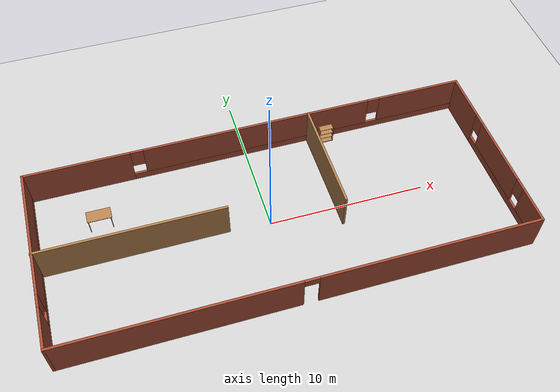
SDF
<sdf version="1.6">
 <world name="default">
  <light name="sun" type="directional">
   <pose>0 0 10 0 -0 0</pose>
   <diffuse>0.8 0.8 0.8 1</diffuse>
   <specular>0.2 0.2 0.2 1</specular>
   <attenuation>
    <range>1000</range>
    <constant>0.9</constant>
    <linear>0.01</linear>
    <quadratic>0.001</quadratic>
   </attenuation>
   <direction>-0.5 0.1 -0.9</direction>
  </light>
  <model name="ground_plane">
   <static>1</static>
   <link name="link">
    <collision name="collision">
     <geometry><plane><normal>0 0 1</normal><size>100 100</size></plane></geometry>
     <surface>
      <contact><collide_bitmask>65535</collide_bitmask></contact>
      <friction><ode><mu>100</mu><mu2>50</mu2></ode></friction>
     </surface>
    </collision>
    <visual name="visual">
     <cast_shadows>0</cast_shadows>
     <geometry><plane><normal>0 0 1</normal><size>100 100</size></plane></geometry>
     <material>
      <script><uri>file://media/materials/scripts/gazebo.material</uri><name>Gazebo/Grey</name></script>
     </material>
    </visual>
   </link>
  </model>
  <gravity>0 0 -9.8</gravity>
  <magnetic_field>6e-06 2.3e-05 -4.2e-05</magnetic_field>
  <atmosphere type="adiabatic"/>
  <physics name="default_physics" default="0" type="ode">
   <max_step_size>0.001</max_step_size>
   <real_time_factor>1</real_time_factor>
   <real_time_update_rate>1000</real_time_update_rate>
  </physics>
  <scene><ambient>0.4 0.4 0.4 1</ambient><background>0.7 0.7 0.7 1</background><shadows>1</shadows></scene>
  <spherical_coordinates>
   <surface_model>EARTH_WGS84</surface_model>
   <latitude_deg>0</latitude_deg>
   <longitude_deg>0</longitude_deg>
   <elevation>0</elevation>
   <heading_deg>0</heading_deg>
  </spherical_coordinates>
  <model name="simple_cafe">
   <pose>0.375893 0.046059 0 0 -0 0</pose>
   <link name="Wall_1">
    <pose>0.020227 5.925 0 0 -0 0</pose>
    <visual name="Wall_1_Visual_0">
     <pose>-11.0381 0 1.25 0 -0 0</pose>
     <geometry><box><size>6.67382 0.15 2.5</size></box></geometry>
     <material>
      <script><uri>file://media/materials/scripts/gazebo.material</uri><name>Gazebo/Bricks</name></script>
      <ambient>1 1 1 1</ambient>
     </material>
     <meta><layer>0</layer></meta>
    </visual>
    <collision name="Wall_1_Collision_0">
     <geometry><box><size>6.67382 0.15 2.5</size></box></geometry>
     <pose>-11.0381 0 1.25 0 -0 0</pose>
    </collision>
    <visual name="Wall_1_Visual_1">
     <pose>3.33691 0 0.25 0 -0 0</pose>
     <geometry><box><size>22.0762 0.15 0.5</size></box></geometry>
     <material>
      <script><uri>file://media/materials/scripts/gazebo.material</uri><name>Gazebo/Bricks</name></script>
      <ambient>1 1 1 1</ambient>
     </material>
     <meta><layer>0</layer></meta>
    </visual>
    <collision name="Wall_1_Collision_1">
     <geometry><box><size>22.0762 0.15 0.5</size></box></geometry>
     <pose>3.33691 0 0.25 0 -0 0</pose>
    </collision>
    <visual name="Wall_1_Visual_2">
     <pose>0.547197 0 1.5 0 -0 0</pose>
     <geometry><box><size>14.8968 0.15 2</size></box></geometry>
     <material>
      <script><uri>file://media/materials/scripts/gazebo.material</uri><name>Gazebo/Bricks</name></script>
      <ambient>1 1 1 1</ambient>
     </material>
     <meta><layer>0</layer></meta>
    </visual>
    <collision name="Wall_1_Collision_2">
     <geometry><box><size>14.8968 0.15 2</size></box></geometry>
     <pose>0.547197 0 1.5 0 -0 0</pose>
    </collision>
    <visual name="Wall_1_Visual_3">
     <pose>11.5853 0 1.5 0 -0 0</pose>
     <geometry><box><size>5.57942 0.15 2</size></box></geometry>
     <material>
      <script><uri>file://media/materials/scripts/gazebo.material</uri><name>Gazebo/Bricks</name></script>
      <ambient>1 1 1 1</ambient>
     </material>
     <meta><layer>0</layer></meta>
    </visual>
    <collision name="Wall_1_Collision_3">
     <geometry><box><size>5.57942 0.15 2</size></box></geometry>
     <pose>11.5853 0 1.5 0 -0 0</pose>
    </collision>
    <visual name="Wall_1_Visual_4">
     <pose>-7.30119 0 1.9 0 -0 0</pose>
     <geometry><box><size>0.8 0.15 1.2</size></box></geometry>
     <material>
      <script><uri>file://media/materials/scripts/gazebo.material</uri><name>Gazebo/Bricks</name></script>
      <ambient>1 1 1 1</ambient>
     </material>
     <meta><layer>0</layer></meta>
    </visual>
    <collision name="Wall_1_Collision_4">
     <geometry><box><size>0.8 0.15 1.2</size></box></geometry>
     <pose>-7.30119 0 1.9 0 -0 0</pose>
    </collision>
    <visual name="Wall_1_Visual_5">
     <pose>8.39558 0 1.9 0 -0 0</pose>
     <geometry><box><size>0.8 0.15 1.2</size></box></geometry>
     <material>
      <script><uri>file://media/materials/scripts/gazebo.material</uri><name>Gazebo/Bricks</name></script>
      <ambient>1 1 1 1</ambient>
     </material>
     <meta><layer>0</layer></meta>
    </visual>
    <collision name="Wall_1_Collision_5">
     <geometry><box><size>0.8 0.15 1.2</size></box></geometry>
     <pose>8.39558 0 1.9 0 -0 0</pose>
    </collision>
   </link>
   <link name="Wall_2">
    <pose>14.3202 0 0 0 0 -1.5708</pose>
    <visual name="Wall_2_Visual_0">
     <pose>-4.342 0 1.25 0 -0 0</pose>
     <geometry><box><size>3.316 0.15 2.5</size></box></geometry>
     <material>
      <script><uri>file://media/materials/scripts/gazebo.material</uri><name>Gazebo/Bricks</name></script>
      <ambient>1 1 1 1</ambient>
     </material>
     <meta><layer>0</layer></meta>
    </visual>
    <collision name="Wall_2_Collision_0">
     <geometry><box><size>3.316 0.15 2.5</size></box></geometry>
     <pose>-4.342 0 1.25 0 -0 0</pose>
    </collision>
    <visual name="Wall_2_Visual_1">
     <pose>1.658 0 0.25 0 -0 0</pose>
     <geometry><box><size>8.684 0.15 0.5</size></box></geometry>
     <material>
      <script><uri>file://media/materials/scripts/gazebo.material</uri><name>Gazebo/Bricks</name></script>
      <ambient>1 1 1 1</ambient>
     </material>
     <meta><layer>0</layer></meta>
    </visual>
    <collision name="Wall_2_Collision_1">
     <geometry><box><size>8.684 0.15 0.5</size></box></geometry>
     <pose>1.658 0 0.25 0 -0 0</pose>
    </collision>
    <visual name="Wall_2_Visual_2">
     <pose>0.487209 0 1.5 0 -0 0</pose>
     <geometry><box><size>4.74241 0.15 2</size></box></geometry>
     <material>
      <script><uri>file://media/materials/scripts/gazebo.material</uri><name>Gazebo/Bricks</name></script>
      <ambient>1 1 1 1</ambient>
     </material>
     <meta><layer>0</layer></meta>
    </visual>
    <collision name="Wall_2_Collision_2">
     <geometry><box><size>4.74241 0.15 2</size></box></geometry>
     <pose>0.487209 0 1.5 0 -0 0</pose>
    </collision>
    <visual name="Wall_2_Visual_3">
     <pose>4.82921 0 1.5 0 -0 0</pose>
     <geometry><box><size>2.34158 0.15 2</size></box></geometry>
     <material>
      <script><uri>file://media/materials/scripts/gazebo.material</uri><name>Gazebo/Bricks</name></script>
      <ambient>1 1 1 1</ambient>
     </material>
     <meta><layer>0</layer></meta>
    </visual>
    <collision name="Wall_2_Collision_3">
     <geometry><box><size>2.34158 0.15 2</size></box></geometry>
     <pose>4.82921 0 1.5 0 -0 0</pose>
    </collision>
    <visual name="Wall_2_Visual_4">
     <pose>-2.284 0 1.9 0 -0 0</pose>
     <geometry><box><size>0.8 0.15 1.2</size></box></geometry>
     <material>
      <script><uri>file://media/materials/scripts/gazebo.material</uri><name>Gazebo/Bricks</name></script>
      <ambient>1 1 1 1</ambient>
     </material>
     <meta><layer>0</layer></meta>
    </visual>
    <collision name="Wall_2_Collision_4">
     <geometry><box><size>0.8 0.15 1.2</size></box></geometry>
     <pose>-2.284 0 1.9 0 -0 0</pose>
    </collision>
    <visual name="Wall_2_Visual_5">
     <pose>3.25842 0 1.9 0 -0 0</pose>
     <geometry><box><size>0.8 0.15 1.2</size></box></geometry>
     <material>
      <script><uri>file://media/materials/scripts/gazebo.material</uri><name>Gazebo/Bricks</name></script>
      <ambient>1 1 1 1</ambient>
     </material>
     <meta><layer>0</layer></meta>
    </visual>
    <collision name="Wall_2_Collision_5">
     <geometry><box><size>0.8 0.15 1.2</size></box></geometry>
     <pose>3.25842 0 1.9 0 -0 0</pose>
    </collision>
   </link>
   <link name="Wall_3">
    <pose>0.020227 -5.925 0 0 -0 3.14159</pose>
    <visual name="Wall_3_Visual_0">
     <pose>-7.5445 0 1.25 0 -0 0</pose>
     <geometry><box><size>13.661 0.15 2.5</size></box></geometry>
     <material>
      <script><uri>file://media/materials/scripts/gazebo.material</uri><name>Gazebo/Bricks</name></script>
      <ambient>1 1 1 1</ambient>
     </material>
     <meta><layer>0</layer></meta>
    </visual>
    <collision name="Wall_3_Collision_0">
     <geometry><box><size>13.661 0.15 2.5</size></box></geometry>
     <pose>-7.5445 0 1.25 0 -0 0</pose>
    </collision>
    <visual name="Wall_3_Visual_1">
     <pose>7.2805 0 1.25 0 -0 0</pose>
     <geometry><box><size>14.189 0.15 2.5</size></box></geometry>
     <material>
      <script><uri>file://media/materials/scripts/gazebo.material</uri><name>Gazebo/Bricks</name></script>
      <ambient>1 1 1 1</ambient>
     </material>
     <meta><layer>0</layer></meta>
    </visual>
    <collision name="Wall_3_Collision_1">
     <geometry><box><size>14.189 0.15 2.5</size></box></geometry>
     <pose>7.2805 0 1.25 0 -0 0</pose>
    </collision>
    <visual name="Wall_3_Visual_2">
     <pose>-0.264008 0 2.25 0 -0 0</pose>
     <geometry><box><size>0.9 0.15 0.5</size></box></geometry>
     <material>
      <script><uri>file://media/materials/scripts/gazebo.material</uri><name>Gazebo/Bricks</name></script>
      <ambient>1 1 1 1</ambient>
     </material>
     <meta><layer>0</layer></meta>
    </visual>
    <collision name="Wall_3_Collision_2">
     <geometry><box><size>0.9 0.15 0.5</size></box></geometry>
     <pose>-0.264008 0 2.25 0 -0 0</pose>
    </collision>
   </link>
   <link name="Wall_4">
    <pose>-14.2798 0 0 0 -0 1.5708</pose>
    <visual name="Wall_4_Visual_0">
     <pose>-4.66739 0 1.25 0 -0 0</pose>
     <geometry><box><size>2.66523 0.15 2.5</size></box></geometry>
     <material>
      <script><uri>file://media/materials/scripts/gazebo.material</uri><name>Gazebo/Bricks</name></script>
      <ambient>1 1 1 1</ambient>
     </material>
     <meta><layer>0</layer></meta>
    </visual>
    <collision name="Wall_4_Collision_0">
     <geometry><box><size>2.66523 0.15 2.5</size></box></geometry>
     <pose>-4.66739 0 1.25 0 -0 0</pose>
    </collision>
    <visual name="Wall_4_Visual_1">
     <pose>1.33261 0 0.25 0 -0 0</pose>
     <geometry><box><size>9.33477 0.15 0.5</size></box></geometry>
     <material>
      <script><uri>file://media/materials/scripts/gazebo.material</uri><name>Gazebo/Bricks</name></script>
      <ambient>1 1 1 1</ambient>
     </material>
     <meta><layer>0</layer></meta>
    </visual>
    <collision name="Wall_4_Collision_1">
     <geometry><box><size>9.33477 0.15 0.5</size></box></geometry>
     <pose>1.33261 0 0.25 0 -0 0</pose>
    </collision>
    <visual name="Wall_4_Visual_2">
     <pose>1.73261 0 1.5 0 -0 0</pose>
     <geometry><box><size>8.53477 0.15 2</size></box></geometry>
     <material>
      <script><uri>file://media/materials/scripts/gazebo.material</uri><name>Gazebo/Bricks</name></script>
      <ambient>1 1 1 1</ambient>
     </material>
     <meta><layer>0</layer></meta>
    </visual>
    <collision name="Wall_4_Collision_2">
     <geometry><box><size>8.53477 0.15 2</size></box></geometry>
     <pose>1.73261 0 1.5 0 -0 0</pose>
    </collision>
    <visual name="Wall_4_Visual_3">
     <pose>-2.93477 0 1.9 0 -0 0</pose>
     <geometry><box><size>0.8 0.15 1.2</size></box></geometry>
     <material>
      <script><uri>file://media/materials/scripts/gazebo.material</uri><name>Gazebo/Bricks</name></script>
      <ambient>1 1 1 1</ambient>
     </material>
     <meta><layer>0</layer></meta>
    </visual>
    <collision name="Wall_4_Collision_3">
     <geometry><box><size>0.8 0.15 1.2</size></box></geometry>
     <pose>-2.93477 0 1.9 0 -0 0</pose>
    </collision>
   </link>
   <link name="Wall_6">
    <collision name="Wall_6_Collision">
     <geometry><box><size>11.5 0.15 2.5</size></box></geometry>
     <pose>0 0 1.25 0 -0 0</pose>
    </collision>
    <visual name="Wall_6_Visual">
     <pose>0 0 1.25 0 -0 0</pose>
     <geometry><box><size>11.5 0.15 2.5</size></box></geometry>
     <material>
      <script><uri>file://media/materials/scripts/gazebo.material</uri><name>Gazebo/Wood</name></script>
      <ambient>1 1 1 1</ambient>
     </material>
     <meta><layer>0</layer></meta>
    </visual>
    <pose>-8.64523 0.180308 0 0 -0 0</pose>
   </link>
   <link name="Wall_8">
    <collision name="Wall_8_Collision">
     <geometry><box><size>7.25 0.15 2.5</size></box></geometry>
     <pose>0 0 1.25 0 -0 0</pose>
    </collision>
    <visual name="Wall_8_Visual">
     <pose>0 0 1.25 0 -0 0</pose>
     <geometry><box><size>7.25 0.15 2.5</size></box></geometry>
     <material>
      <script><uri>file://media/materials/scripts/gazebo.material</uri><name>Gazebo/Wood</name></script>
      <ambient>1 1 1 1</ambient>
     </material>
     <meta><layer>0</layer></meta>
    </visual>
    <pose>3.92524 2.29409 0 0 0 -1.5708</pose>
   </link>
   <static>1</static>
  </model>
  <model name="table">
   <static>1</static>
   <link name="link">
    <collision name="surface">
     <pose>0 0 1 0 -0 0</pose>
     <geometry><box><size>1.5 0.8 0.03</size></box></geometry>
     <surface><friction><ode><mu>0.6</mu><mu2>0.6</mu2></ode></friction></surface>
    </collision>
    <visual name="visual1">
     <pose>0 0 1 0 -0 0</pose>
     <geometry><box><size>1.5 0.8 0.03</size></box></geometry>
     <material>
      <script><uri>file://media/materials/scripts/gazebo.material</uri><name>Gazebo/Wood</name></script>
     </material>
    </visual>
    <collision name="front_left_leg">
     <pose>0.68 0.38 0.5 0 -0 0</pose>
     <geometry><cylinder><radius>0.02</radius><length>1</length></cylinder></geometry>
    </collision>
    <visual name="front_left_leg">
     <pose>0.68 0.38 0.5 0 -0 0</pose>
     <geometry><cylinder><radius>0.02</radius><length>1</length></cylinder></geometry>
     <material>
      <script><uri>file://media/materials/scripts/gazebo.material</uri><name>Gazebo/Grey</name></script>
     </material>
    </visual>
    <collision name="front_right_leg">
     <pose>0.68 -0.38 0.5 0 -0 0</pose>
     <geometry><cylinder><radius>0.02</radius><length>1</length></cylinder></geometry>
    </collision>
    <visual name="front_right_leg">
     <pose>0.68 -0.38 0.5 0 -0 0</pose>
     <geometry><cylinder><radius>0.02</radius><length>1</length></cylinder></geometry>
     <material>
      <script><uri>file://media/materials/scripts/gazebo.material</uri><name>Gazebo/Grey</name></script>
     </material>
    </visual>
    <collision name="back_right_leg">
     <pose>-0.68 -0.38 0.5 0 -0 0</pose>
     <geometry><cylinder><radius>0.02</radius><length>1</length></cylinder></geometry>
    </collision>
    <visual name="back_right_leg">
     <pose>-0.68 -0.38 0.5 0 -0 0</pose>
     <geometry><cylinder><radius>0.02</radius><length>1</length></cylinder></geometry>
     <material>
      <script><uri>file://media/materials/scripts/gazebo.material</uri><name>Gazebo/Grey</name></script>
     </material>
    </visual>
    <collision name="back_left_leg">
     <pose>-0.68 0.38 0.5 0 -0 0</pose>
     <geometry><cylinder><radius>0.02</radius><length>1</length></cylinder></geometry>
    </collision>
    <visual name="back_left_leg">
     <pose>-0.68 0.38 0.5 0 -0 0</pose>
     <geometry><cylinder><radius>0.02</radius><length>1</length></cylinder></geometry>
     <material>
      <script><uri>file://media/materials/scripts/gazebo.material</uri><name>Gazebo/Grey</name></script>
     </material>
    </visual>
   </link>
   <pose>-9.98935 2.94956 0 0 -0 0</pose>
  </model>
  <model name="bookshelf">
   <static>1</static>
   <link name="link">
    <inertial><mass>1</mass></inertial>
    <collision name="back">
     <pose>0 0.005 0.6 0 -0 0</pose>
     <geometry><box><size>0.9 0.01 1.2</size></box></geometry>
    </collision>
    <visual name="visual1">
     <pose>0 0.005 0.6 0 -0 0</pose>
     <geometry><box><size>0.9 0.01 1.2</size></box></geometry>
     <material>
      <script><uri>file://media/materials/scripts/gazebo.material</uri><name>Gazebo/Wood</name></script>
     </material>
    </visual>
    <collision name="left_side">
     <pose>0.45 -0.195 0.6 0 -0 0</pose>
     <geometry><box><size>0.02 0.4 1.2</size></box></geometry>
    </collision>
    <visual name="visual2">
     <pose>0.45 -0.195 0.6 0 -0 0</pose>
     <geometry><box><size>0.02 0.4 1.2</size></box></geometry>
     <material>
      <script><uri>file://media/materials/scripts/gazebo.material</uri><name>Gazebo/Wood</name></script>
     </material>
    </visual>
    <collision name="right_side">
     <pose>-0.45 -0.195 0.6 0 -0 0</pose>
     <geometry><box><size>0.02 0.4 1.2</size></box></geometry>
    </collision>
    <visual name="visual3">
     <pose>-0.45 -0.195 0.6 0 -0 0</pose>
     <geometry><box><size>0.02 0.4 1.2</size></box></geometry>
     <material>
      <script><uri>file://media/materials/scripts/gazebo.material</uri><name>Gazebo/Wood</name></script>
     </material>
    </visual>
    <collision name="bottom">
     <pose>0 -0.195 0.03 0 -0 0</pose>
     <geometry><box><size>0.88 0.4 0.06</size></box></geometry>
    </collision>
    <visual name="visual4">
     <pose>0 -0.195 0.03 0 -0 0</pose>
     <geometry><box><size>0.88 0.4 0.06</size></box></geometry>
     <material>
      <script><uri>file://media/materials/scripts/gazebo.material</uri><name>Gazebo/Wood</name></script>
     </material>
    </visual>
    <collision name="top">
     <pose>0 -0.195 1.19 0 -0 0</pose>
     <geometry><box><size>0.88 0.4 0.02</size></box></geometry>
    </collision>
    <visual name="visual5">
     <pose>0 -0.195 1.19 0 -0 0</pose>
     <geometry><box><size>0.88 0.4 0.02</size></box></geometry>
     <material>
      <script><uri>file://media/materials/scripts/gazebo.material</uri><name>Gazebo/Wood</name></script>
     </material>
    </visual>
    <collision name="low_shelf">
     <pose>0 -0.195 0.43 0 -0 0</pose>
     <geometry><box><size>0.88 0.4 0.02</size></box></geometry>
    </collision>
    <visual name="visual6">
     <pose>0 -0.195 0.43 0 -0 0</pose>
     <geometry><box><size>0.88 0.4 0.02</size></box></geometry>
     <material>
      <script><uri>file://media/materials/scripts/gazebo.material</uri><name>Gazebo/Wood</name></script>
     </material>
    </visual>
    <collision name="high_shelf">
     <pose>0 -0.195 0.8 0 -0 0</pose>
     <geometry><box><size>0.88 0.4 0.02</size></box></geometry>
    </collision>
    <visual name="visual7">
     <pose>0 -0.195 0.8 0 -0 0</pose>
     <geometry><box><size>0.88 0.4 0.02</size></box></geometry>
     <material>
      <script><uri>file://media/materials/scripts/gazebo.material</uri><name>Gazebo/Wood</name></script>
     </material>
    </visual>
   </link>
   <pose>5.45404 5.78562 0 0 -0 0</pose>
  </model>
 </world>
</sdf>
